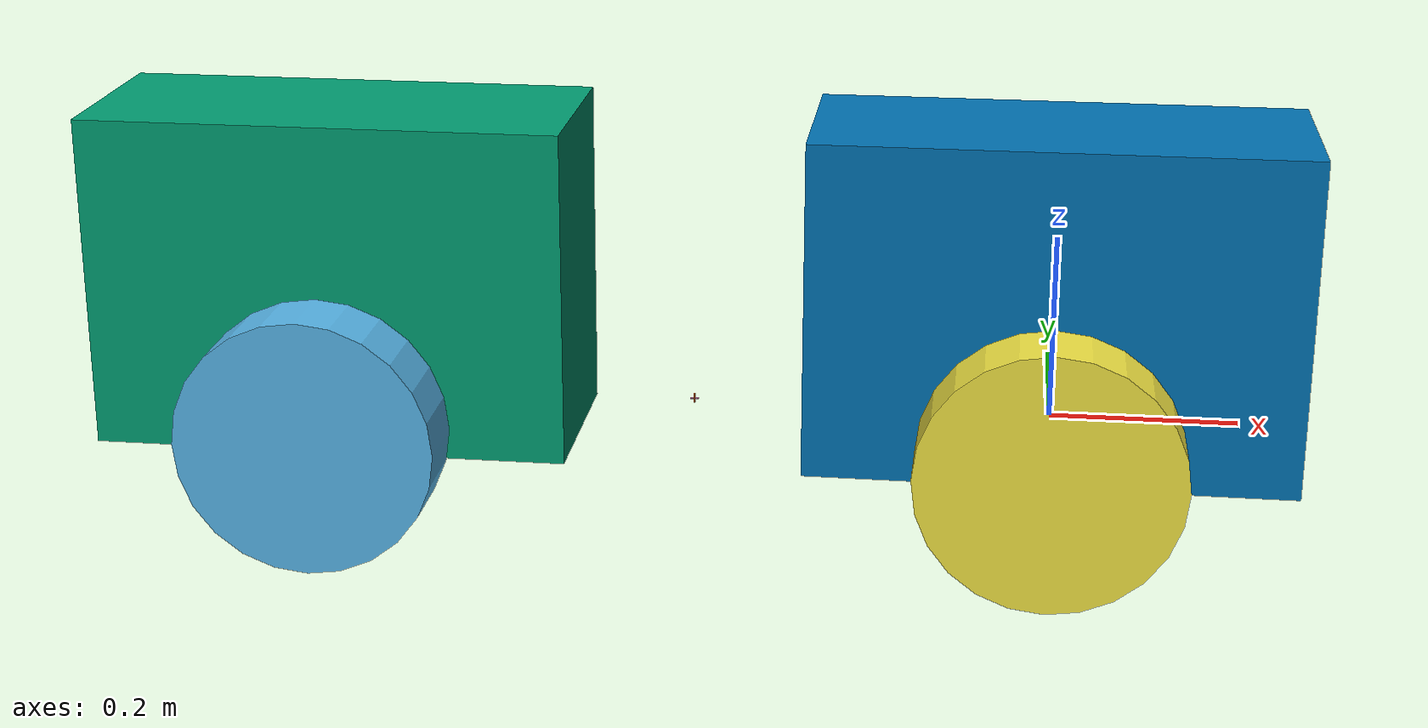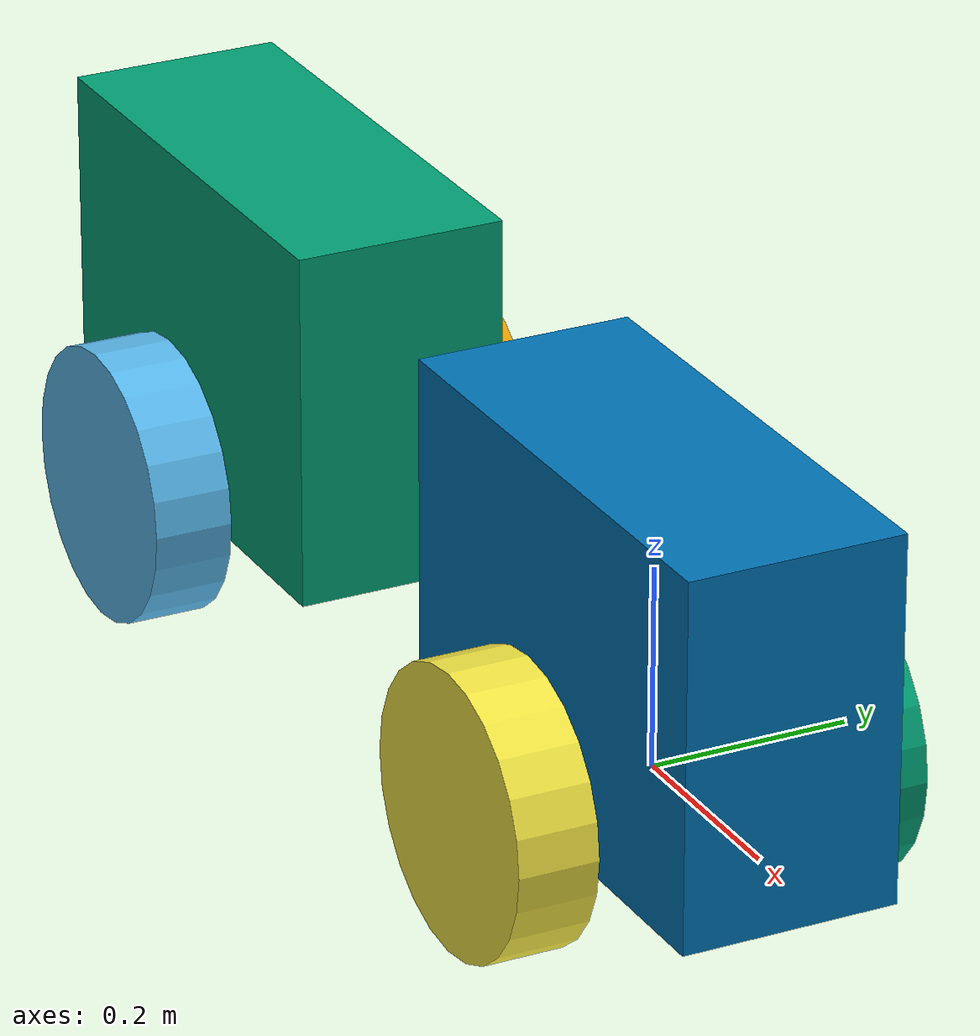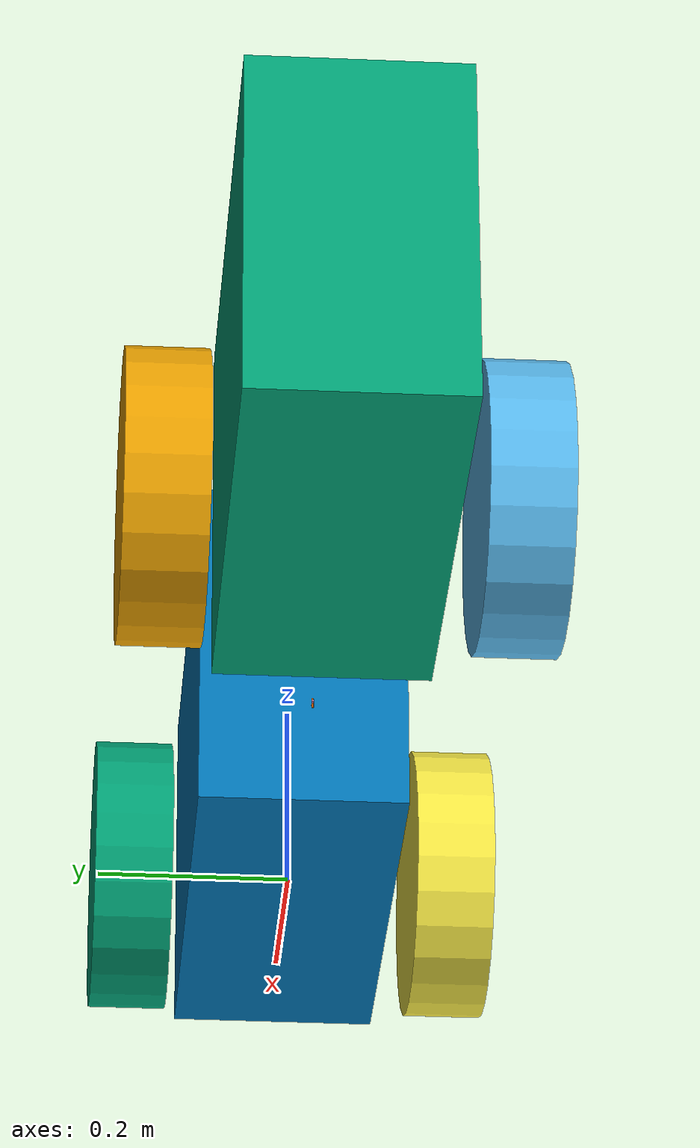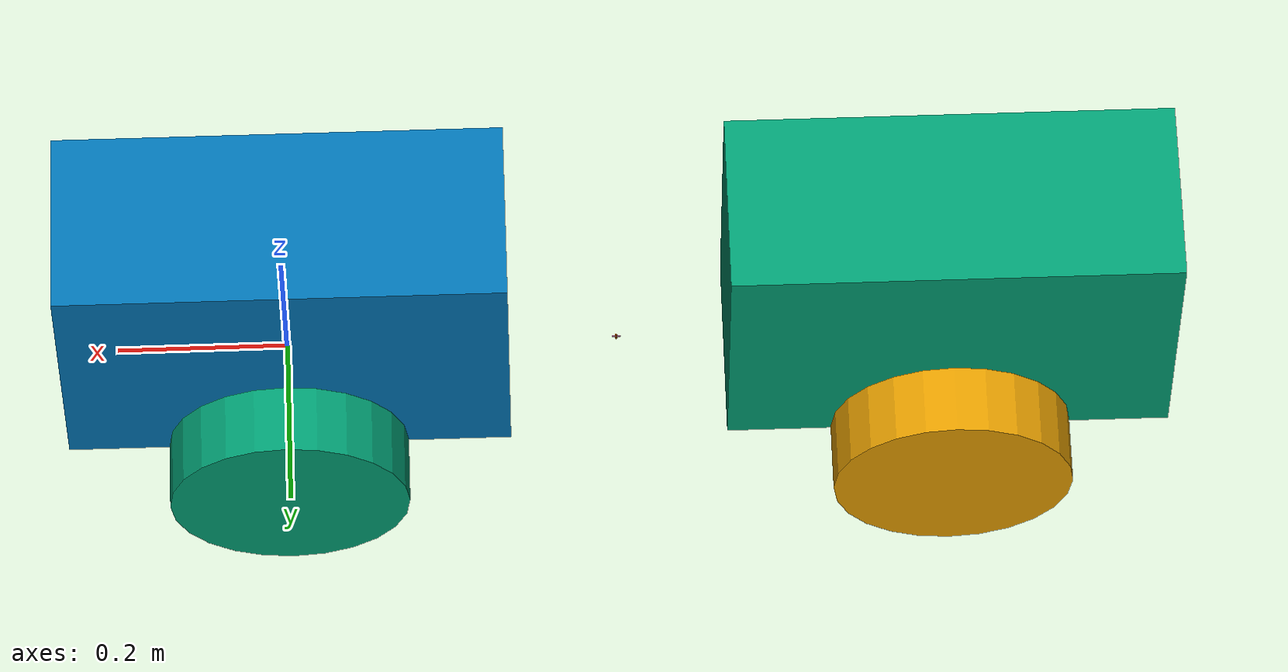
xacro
<?xml version="1.0" encoding="UTF-8"?>
<robot xmlns:xacro="http://www.ros.org/wiki/xacro" name="Floribot">

<!-- wagon parameter -->
<xacro:property name="height_wagon" value="0.363" />
<xacro:property name="width_wagon" value="0.215" />
<xacro:property name="length_wagon_visual_front" value="0.635" />
<xacro:property name="length_wagon_visual_rear" value="0.605" />
<xacro:property name="length_wagon_collition" value="0.52" />

<!-- wheel parameter -->
<xacro:property name="wheel_radius" value="0.14" />
<xacro:property name="wheel_thickness" value="0.08" />
<xacro:property name="x_joint_wheel_front" value="0" />
<xacro:property name="y_joint_wheel_front" value="0.167" />
<xacro:property name="x_joint_wheel_back" value="0" />
<xacro:property name="y_joint_wheel_back" value="0.167" />

<!-- articulated joint parameter -->
<xacro:property name="radius" value="0.001" />
<xacro:property name="vertical_length" value="0.01" />
<xacro:property name="horizontal_length" value="0.01" />
<xacro:property name="wheelBase" value="0.775" />

<!-- links -->

<link name="base_link">
</link>

<link name="axleFront_link">
</link>

<link name="wheelFrontLeft_link">

  <visual>
    <origin xyz="0 0 0" rpy="1.57 0 0"/>
    <geometry>
      <cylinder length="${wheel_thickness}" radius="${wheel_radius}"/>
    </geometry>
  </visual>

  <collision>
    <origin xyz="0 0 0" rpy="1.57 0 0"/>
    <geometry>
      <cylinder length="${wheel_thickness}" radius="${wheel_radius}"/>
    </geometry>
  </collision>

  <inertial>
    <mass value="2.4"/>
    <inertia ixx="0.014" ixy="0.0" ixz="0.0" iyy="0.026" iyz="0.0" izz="0.014"/>
  </inertial>
</link>

<link name="wheelFrontRight_link">

  <visual>
    <origin xyz="0 0 0" rpy="1.57 0 0"/>
    <geometry>
      <cylinder length="${wheel_thickness}" radius="${wheel_radius}"/>
    </geometry>
  </visual>

  <collision>
    <origin xyz="0 0 0" rpy="1.57 0 0"/>
    <geometry>
      <cylinder length="${wheel_thickness}" radius="${wheel_radius}"/>
    </geometry>
  </collision>

  <inertial>
    <mass value="2.4"/>
    <inertia ixx="0.014" ixy="0.0" ixz="0.0" iyy="0.026" iyz="0.0" izz="0.014"/>
    </inertial>
</link>

<link name="frontWagon_link">

  <visual>
    <origin xyz="0 0 ${wheel_radius}" rpy="0 0 0"/>
    <geometry>
      <box size="${length_wagon_collition} ${width_wagon} ${height_wagon}"/>
    </geometry>
  </visual>

  <collision>
    <origin xyz="0 0 ${wheel_radius}" rpy="0 0 0"/>
    <geometry>
      <box size="${length_wagon_collition} ${width_wagon} ${height_wagon}"/>
    </geometry>
  </collision>

  <inertial>
    <origin xyz="0 0 ${wheel_radius}" rpy="0 0 0"/>
    <mass value="31"/>
    <inertia ixx="0.3853" ixy="0.0001197" ixz="-0.0128" iyy="1.0" iyz="0.0000149" izz="0.8678"/>
  </inertial>
</link>

<link name="jointFront_link">

  <visual>
    <origin xyz="0 0 0" rpy="0 0 0"/>
    <geometry>
      <cylinder length="${vertical_length}" radius="${radius}"/>
    </geometry>
  </visual>

  <collision>
    <origin xyz="0 0 0" rpy="0 0 0"/>
    <geometry>
      <cylinder length="${vertical_length}" radius="${radius}"/>
    </geometry>
  </collision>

  <inertial>
    <mass value="0.01"/>
    <inertia ixx="0.000001" ixy="0.0" ixz="0.0" iyy="0.0" iyz="0.0" izz="0.000001"/>
  </inertial>
</link>

<link name="jointRear_link">

  <visual>
    <origin xyz="0 0 0" rpy="0 1.57 0"/>
    <geometry>
      <cylinder length="${horizontal_length}" radius="${radius}"/>
    </geometry>
  </visual>

  <collision>
    <origin xyz="0 0 0" rpy="0 1.57 0"/>
    <geometry>
      <cylinder length="${horizontal_length}" radius="${radius}"/>
    </geometry>
  </collision>

  <inertial>
    <mass value="0.01"/>
    <inertia ixx="0.000001" ixy="0.0" ixz="0.0" iyy="0.0" iyz="0.0" izz="0.000001"/>
  </inertial>
</link>

<link name="axleRear_link">
</link>

<link name="wheelRearLeft_link">

  <visual>
    <origin xyz="0 0 0" rpy="1.57 0 0"/>
    <geometry>
      <cylinder length="${wheel_thickness}" radius="${wheel_radius}"/>
    </geometry>
  </visual>

  <collision>
    <origin xyz="0 0 0" rpy="1.57 0 0"/>
    <geometry>
      <cylinder length="${wheel_thickness}" radius="${wheel_radius}"/>
    </geometry>
  </collision>

  <inertial>
    <mass value="2.4"/>
    <inertia ixx="0.014" ixy="0.0" ixz="0.0" iyy="0.026" iyz="0.0" izz="0.014"/>
  </inertial>
</link>

<link name="wheelRearRight_link">

  <visual>
    <origin xyz="0 0 0" rpy="1.57 0 0"/>
    <geometry>
      <cylinder length="${wheel_thickness}" radius="${wheel_radius}"/>
    </geometry>
  </visual>

  <collision>
    <origin xyz="0 0 0" rpy="1.57 0 0"/>
    <geometry>
      <cylinder length="${wheel_thickness}" radius="${wheel_radius}"/>
    </geometry>
  </collision>

  <inertial>
    <mass value="2.4"/>
    <inertia ixx="0.014" ixy="0.0" ixz="0.0" iyy="0.026" iyz="0.0" izz="0.014"/>
  </inertial>
</link>

<link name="rearWagon_link">

  <visual>
    <origin xyz="0 0 ${wheel_radius}" rpy="0 0 0"/>
    <geometry>
      <box size="${length_wagon_collition} ${width_wagon} ${height_wagon}"/>
    </geometry>
  </visual>

  <collision>
    <origin xyz="0 0 ${wheel_radius}" rpy="0 0 0"/>
    <geometry>
      <box size="${length_wagon_collition} ${width_wagon} ${height_wagon}"/>
    </geometry>
  </collision>

  <inertial>
    <origin xyz="0 0 ${wheel_radius}" rpy="0 0 0"/>
    <mass value="33"/>
    <inertia ixx="0.4137" ixy="0.00027" ixz="0.007359" iyy="1.047" iyz="0.0001775" izz="0.9021"/>
    </inertial>
</link>

<!-- joints -->

<joint name="base_link_2_axleFront_link" type="fixed">
  <parent link="base_link"/>
  <child link="axleFront_link"/>
  <origin xyz="0 0 0"/>
</joint>

<joint name="axleFront_link_2_wheelFrontLeft_link" type="continuous">
  <parent link="axleFront_link"/>
  <child link="wheelFrontLeft_link"/>
  <axis xyz="0 1 0"/>
  <origin xyz="${x_joint_wheel_front} ${y_joint_wheel_front} 0"/>
  <limit effort="100.0" velocity="14.2857" />
</joint>

<joint name="axleFront_link_2_wheelFrontRight_link" type="continuous">
  <parent link="axleFront_link"/>
  <child link="wheelFrontRight_link"/>
  <axis xyz="0 1 0"/>
  <origin xyz="${x_joint_wheel_front} -${y_joint_wheel_front} 0"/>
  <limit effort="100.0" velocity="14.2857" />
</joint>

<joint name="axleFront_link_2_frontWagon_link" type="fixed">
  <parent link="axleFront_link"/>
  <child link="frontWagon_link"/>
  <origin xyz="0 0 0"/>
</joint>

<joint name="axleFront_link_2_jointFront_link" type="revolute">
    <axis xyz="1 0 0"/>
    <limit effort="1.0" lower="-1.57" upper="1.57" velocity="0.5"/>
    <parent link="axleFront_link"/>
    <child link="jointFront_link"/>
    <origin xyz="${-wheelBase/2} 0 0"/>
</joint>

<joint name="jointFront_link_2_jointRear_link" type="revolute">
  <axis xyz="0 0 1"/>
  <limit effort="1.0" lower="-1.57" upper="1.57" velocity="0.5"/>-
  <parent link="jointFront_link"/>
  <child link="jointRear_link"/>
  <origin xyz="0 0 0"/>
</joint>

<joint name="jointRear_link_2_axleRear_link" type="fixed">
  <parent link="jointRear_link"/>
  <child link="axleRear_link"/>
  <origin xyz="${-wheelBase/2} 0 0"/>
</joint>

<joint name="axleRear_link_2_wheelRearLeft_link" type="continuous">
  <parent link="axleRear_link"/>
  <child link="wheelRearLeft_link"/>
  <axis xyz="0 1 0"/>
  <origin xyz="${x_joint_wheel_back} ${y_joint_wheel_back} 0"/>
  <limit effort="100.0" velocity="14.2857" />
</joint>

<joint name="axleRear_link_2_wheelRearRight_link" type="continuous">
  <parent link="axleRear_link"/>
  <child link="wheelRearRight_link"/>
  <axis xyz="0 1 0"/>
  <origin xyz="${x_joint_wheel_back} -${y_joint_wheel_back} 0"/>
  <limit effort="100.0" velocity="14.2857" />
</joint>

<joint name="axleRear_link_2_rearWagon_link" type="fixed">
  <parent link="axleRear_link"/>
  <child link="rearWagon_link"/>
  <origin xyz="0 0 0"/>
</joint>

<!-- transmissions are required to present these joints in the ros topic joint_states -->

<transmission name="body_angle_trans">
  <type>transmission_interface/SimpleTransmission</type>
  <joint name="jointFront_link_2_jointRear_link">
    <hardwareInterface>hardware_interface/VelocityJointInterface</hardwareInterface>
  </joint>
  <actuator name="body_angle_motor">
    <mechanicalReduction>1</mechanicalReduction>
  </actuator>
</transmission>

<transmission name="swaing_angle_trans">
  <type>transmission_interface/SimpleTransmission</type>
  <joint name="axleFront_link_2_jointFront_link">
    <hardwareInterface>hardware_interface/VelocityJointInterface</hardwareInterface>
  </joint>
  <actuator name="swing_angle_motor">
    <mechanicalReduction>1</mechanicalReduction>
  </actuator>
</transmission>

<!-- macro wheel tranmission -->
<xacro:macro name="wheel_transmission" params="position">
  <transmission name="${position}_trans">
    <type>transmission_interface/SimpleTransmission</type>
    <joint name="${position}">
      <hardwareInterface>hardware_interface/VelocityJointInterface</hardwareInterface>
      <mechanicalReduction>1</mechanicalReduction>
    </joint>
    <actuator name="${position}_motor">
    </actuator>
  </transmission>
  <gazebo reference="${position}">
    <mu1 value="0.5"/>
    <mu2 value="0.5"/>
    <kp value="10000000.0" />
    <kd value="1.0" />
    <fdir1 value="1 0 0"/>
  </gazebo>
</xacro:macro>

<xacro:wheel_transmission position="axleFront_link_2_wheelFrontLeft_link" />

<xacro:wheel_transmission position="axleFront_link_2_wheelFrontRight_link" />

<xacro:wheel_transmission position="axleRear_link_2_wheelRearLeft_link" />

<xacro:wheel_transmission position="axleRear_link_2_wheelRearRight_link" />

<!-- Gazebo plugin for ROS Control -->
<gazebo>
  <plugin name="gazebo_ros_control" filename="libgazebo_ros_control.so">
  </plugin>
</gazebo>

</robot>
